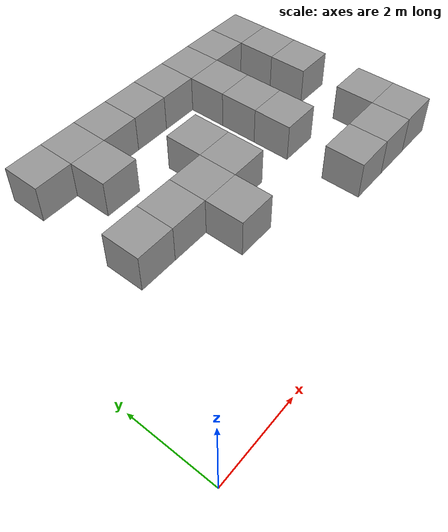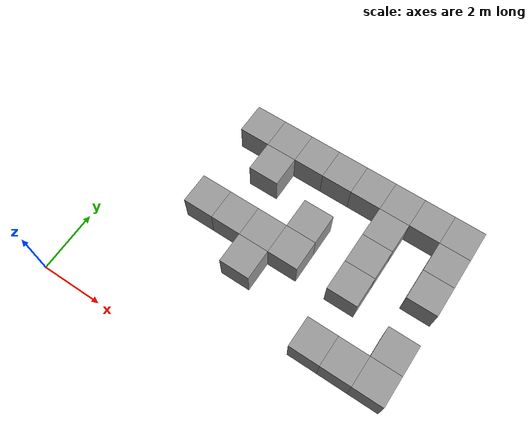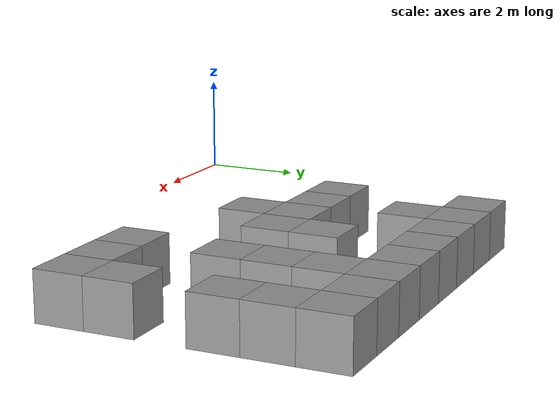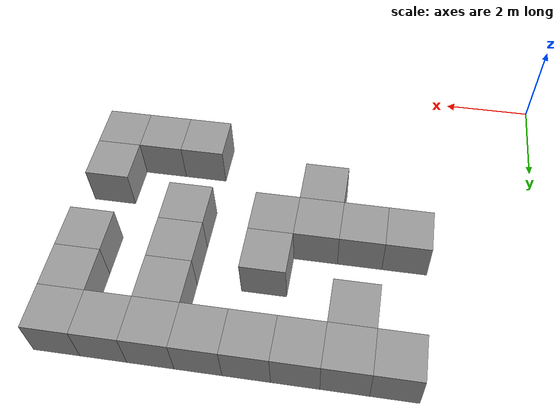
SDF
<sdf version="1.7">
 <model name="maze1">
  <link name="link_1">
   <inertial>
    <mass>1</mass>
    <inertia>
     <ixx>0.166667</ixx>
     <ixy>0</ixy>
     <ixz>0</ixz>
     <iyy>0.166667</iyy>
     <iyz>0</iyz>
     <izz>0.166667</izz>
    </inertia>
   </inertial>
   <pose>9.75382 7.37465 0 0 -0 0</pose>
   <visual name="visual">
    <geometry><box><size>1 1 1</size></box></geometry>
    <material>
     <lighting>1</lighting>
     <script><uri>file://media/materials/scripts/gazebo.material</uri><name>Gazebo/Grey</name></script>
     <shader type="pixel"><normal_map>__default__</normal_map></shader>
     <ambient>0.3 0.3 0.3 1</ambient>
     <diffuse>0.7 0.7 0.7 1</diffuse>
     <specular>0.01 0.01 0.01 1</specular>
     <emissive>0 0 0 1</emissive>
    </material>
   </visual>
   <collision name="collision">
    <geometry><box><size>1 1 1</size></box></geometry>
    <surface>
     <friction>
      <ode><mu>1</mu><mu2>1</mu2><fdir1>0 0 0</fdir1><slip1>0</slip1><slip2>0</slip2></ode>
      <torsional>
       <coefficient>1</coefficient>
       <patch_radius>0</patch_radius>
       <surface_radius>0</surface_radius>
       <use_patch_radius>1</use_patch_radius>
       <ode><slip>0</slip></ode>
      </torsional>
     </friction>
     <bounce><restitution_coefficient>0</restitution_coefficient><threshold>1e+06</threshold></bounce>
     <contact>
      <collide_without_contact>0</collide_without_contact>
      <collide_without_contact_bitmask>1</collide_without_contact_bitmask>
      <collide_bitmask>1</collide_bitmask>
      <ode>
       <soft_cfm>0</soft_cfm>
       <soft_erp>0.2</soft_erp>
       <kp>1e+13</kp>
       <kd>1</kd>
       <max_vel>0.01</max_vel>
       <min_depth>0</min_depth>
      </ode>
      <bullet>
       <split_impulse>1</split_impulse>
       <split_impulse_penetration_threshold>-0.01</split_impulse_penetration_threshold>
       <soft_cfm>0</soft_cfm>
       <soft_erp>0.2</soft_erp>
       <kp>1e+13</kp>
       <kd>1</kd>
      </bullet>
     </contact>
    </surface>
   </collision>
  </link>
  <link name="link_1_clone">
   <inertial>
    <mass>1</mass>
    <inertia>
     <ixx>0.166667</ixx>
     <ixy>0</ixy>
     <ixz>0</ixz>
     <iyy>0.166667</iyy>
     <iyz>0</iyz>
     <izz>0.166667</izz>
    </inertia>
   </inertial>
   <pose>8.75382 7.37465 0 0 -0 0</pose>
   <visual name="visual">
    <geometry><box><size>1 1 1</size></box></geometry>
    <material>
     <lighting>1</lighting>
     <script><uri>file://media/materials/scripts/gazebo.material</uri><name>Gazebo/Grey</name></script>
     <shader type="pixel"><normal_map>__default__</normal_map></shader>
     <ambient>0.3 0.3 0.3 1</ambient>
     <diffuse>0.7 0.7 0.7 1</diffuse>
     <specular>0.01 0.01 0.01 1</specular>
     <emissive>0 0 0 1</emissive>
    </material>
   </visual>
   <collision name="collision">
    <geometry><box><size>1 1 1</size></box></geometry>
    <surface>
     <friction>
      <ode><mu>1</mu><mu2>1</mu2><fdir1>0 0 0</fdir1><slip1>0</slip1><slip2>0</slip2></ode>
      <torsional>
       <coefficient>1</coefficient>
       <patch_radius>0</patch_radius>
       <surface_radius>0</surface_radius>
       <use_patch_radius>1</use_patch_radius>
       <ode><slip>0</slip></ode>
      </torsional>
     </friction>
     <bounce><restitution_coefficient>0</restitution_coefficient><threshold>1e+06</threshold></bounce>
     <contact>
      <collide_without_contact>0</collide_without_contact>
      <collide_without_contact_bitmask>1</collide_without_contact_bitmask>
      <collide_bitmask>1</collide_bitmask>
      <ode>
       <soft_cfm>0</soft_cfm>
       <soft_erp>0.2</soft_erp>
       <kp>1e+13</kp>
       <kd>1</kd>
       <max_vel>0.01</max_vel>
       <min_depth>0</min_depth>
      </ode>
      <bullet>
       <split_impulse>1</split_impulse>
       <split_impulse_penetration_threshold>-0.01</split_impulse_penetration_threshold>
       <soft_cfm>0</soft_cfm>
       <soft_erp>0.2</soft_erp>
       <kp>1e+13</kp>
       <kd>1</kd>
      </bullet>
     </contact>
    </surface>
   </collision>
  </link>
  <link name="link_1_clone_0">
   <inertial>
    <mass>1</mass>
    <inertia>
     <ixx>0.166667</ixx>
     <ixy>0</ixy>
     <ixz>0</ixz>
     <iyy>0.166667</iyy>
     <iyz>0</iyz>
     <izz>0.166667</izz>
    </inertia>
   </inertial>
   <pose>7.75382 7.37465 0 0 -0 0</pose>
   <visual name="visual">
    <geometry><box><size>1 1 1</size></box></geometry>
    <material>
     <lighting>1</lighting>
     <script><uri>file://media/materials/scripts/gazebo.material</uri><name>Gazebo/Grey</name></script>
     <shader type="pixel"><normal_map>__default__</normal_map></shader>
     <ambient>0.3 0.3 0.3 1</ambient>
     <diffuse>0.7 0.7 0.7 1</diffuse>
     <specular>0.01 0.01 0.01 1</specular>
     <emissive>0 0 0 1</emissive>
    </material>
   </visual>
   <collision name="collision">
    <geometry><box><size>1 1 1</size></box></geometry>
    <surface>
     <friction>
      <ode><mu>1</mu><mu2>1</mu2><fdir1>0 0 0</fdir1><slip1>0</slip1><slip2>0</slip2></ode>
      <torsional>
       <coefficient>1</coefficient>
       <patch_radius>0</patch_radius>
       <surface_radius>0</surface_radius>
       <use_patch_radius>1</use_patch_radius>
       <ode><slip>0</slip></ode>
      </torsional>
     </friction>
     <bounce><restitution_coefficient>0</restitution_coefficient><threshold>1e+06</threshold></bounce>
     <contact>
      <collide_without_contact>0</collide_without_contact>
      <collide_without_contact_bitmask>1</collide_without_contact_bitmask>
      <collide_bitmask>1</collide_bitmask>
      <ode>
       <soft_cfm>0</soft_cfm>
       <soft_erp>0.2</soft_erp>
       <kp>1e+13</kp>
       <kd>1</kd>
       <max_vel>0.01</max_vel>
       <min_depth>0</min_depth>
      </ode>
      <bullet>
       <split_impulse>1</split_impulse>
       <split_impulse_penetration_threshold>-0.01</split_impulse_penetration_threshold>
       <soft_cfm>0</soft_cfm>
       <soft_erp>0.2</soft_erp>
       <kp>1e+13</kp>
       <kd>1</kd>
      </bullet>
     </contact>
    </surface>
   </collision>
  </link>
  <link name="link_1_clone_1">
   <inertial>
    <mass>1</mass>
    <inertia>
     <ixx>0.166667</ixx>
     <ixy>0</ixy>
     <ixz>0</ixz>
     <iyy>0.166667</iyy>
     <iyz>0</iyz>
     <izz>0.166667</izz>
    </inertia>
   </inertial>
   <pose>6.75382 7.37465 0 0 -0 0</pose>
   <visual name="visual">
    <geometry><box><size>1 1 1</size></box></geometry>
    <material>
     <lighting>1</lighting>
     <script><uri>file://media/materials/scripts/gazebo.material</uri><name>Gazebo/Grey</name></script>
     <shader type="pixel"><normal_map>__default__</normal_map></shader>
     <ambient>0.3 0.3 0.3 1</ambient>
     <diffuse>0.7 0.7 0.7 1</diffuse>
     <specular>0.01 0.01 0.01 1</specular>
     <emissive>0 0 0 1</emissive>
    </material>
   </visual>
   <collision name="collision">
    <geometry><box><size>1 1 1</size></box></geometry>
    <surface>
     <friction>
      <ode><mu>1</mu><mu2>1</mu2><fdir1>0 0 0</fdir1><slip1>0</slip1><slip2>0</slip2></ode>
      <torsional>
       <coefficient>1</coefficient>
       <patch_radius>0</patch_radius>
       <surface_radius>0</surface_radius>
       <use_patch_radius>1</use_patch_radius>
       <ode><slip>0</slip></ode>
      </torsional>
     </friction>
     <bounce><restitution_coefficient>0</restitution_coefficient><threshold>1e+06</threshold></bounce>
     <contact>
      <collide_without_contact>0</collide_without_contact>
      <collide_without_contact_bitmask>1</collide_without_contact_bitmask>
      <collide_bitmask>1</collide_bitmask>
      <ode>
       <soft_cfm>0</soft_cfm>
       <soft_erp>0.2</soft_erp>
       <kp>1e+13</kp>
       <kd>1</kd>
       <max_vel>0.01</max_vel>
       <min_depth>0</min_depth>
      </ode>
      <bullet>
       <split_impulse>1</split_impulse>
       <split_impulse_penetration_threshold>-0.01</split_impulse_penetration_threshold>
       <soft_cfm>0</soft_cfm>
       <soft_erp>0.2</soft_erp>
       <kp>1e+13</kp>
       <kd>1</kd>
      </bullet>
     </contact>
    </surface>
   </collision>
  </link>
  <link name="link_1_clone_2">
   <inertial>
    <mass>1</mass>
    <inertia>
     <ixx>0.166667</ixx>
     <ixy>0</ixy>
     <ixz>0</ixz>
     <iyy>0.166667</iyy>
     <iyz>0</iyz>
     <izz>0.166667</izz>
    </inertia>
   </inertial>
   <pose>5.75382 7.37465 0 0 -0 0</pose>
   <visual name="visual">
    <geometry><box><size>1 1 1</size></box></geometry>
    <material>
     <lighting>1</lighting>
     <script><uri>file://media/materials/scripts/gazebo.material</uri><name>Gazebo/Grey</name></script>
     <shader type="pixel"><normal_map>__default__</normal_map></shader>
     <ambient>0.3 0.3 0.3 1</ambient>
     <diffuse>0.7 0.7 0.7 1</diffuse>
     <specular>0.01 0.01 0.01 1</specular>
     <emissive>0 0 0 1</emissive>
    </material>
   </visual>
   <collision name="collision">
    <geometry><box><size>1 1 1</size></box></geometry>
    <surface>
     <friction>
      <ode><mu>1</mu><mu2>1</mu2><fdir1>0 0 0</fdir1><slip1>0</slip1><slip2>0</slip2></ode>
      <torsional>
       <coefficient>1</coefficient>
       <patch_radius>0</patch_radius>
       <surface_radius>0</surface_radius>
       <use_patch_radius>1</use_patch_radius>
       <ode><slip>0</slip></ode>
      </torsional>
     </friction>
     <bounce><restitution_coefficient>0</restitution_coefficient><threshold>1e+06</threshold></bounce>
     <contact>
      <collide_without_contact>0</collide_without_contact>
      <collide_without_contact_bitmask>1</collide_without_contact_bitmask>
      <collide_bitmask>1</collide_bitmask>
      <ode>
       <soft_cfm>0</soft_cfm>
       <soft_erp>0.2</soft_erp>
       <kp>1e+13</kp>
       <kd>1</kd>
       <max_vel>0.01</max_vel>
       <min_depth>0</min_depth>
      </ode>
      <bullet>
       <split_impulse>1</split_impulse>
       <split_impulse_penetration_threshold>-0.01</split_impulse_penetration_threshold>
       <soft_cfm>0</soft_cfm>
       <soft_erp>0.2</soft_erp>
       <kp>1e+13</kp>
       <kd>1</kd>
      </bullet>
     </contact>
    </surface>
   </collision>
  </link>
  <link name="link_1_clone_3">
   <inertial>
    <mass>1</mass>
    <inertia>
     <ixx>0.166667</ixx>
     <ixy>0</ixy>
     <ixz>0</ixz>
     <iyy>0.166667</iyy>
     <iyz>0</iyz>
     <izz>0.166667</izz>
    </inertia>
   </inertial>
   <pose>4.75382 7.37465 0 0 -0 0</pose>
   <visual name="visual">
    <geometry><box><size>1 1 1</size></box></geometry>
    <material>
     <lighting>1</lighting>
     <script><uri>file://media/materials/scripts/gazebo.material</uri><name>Gazebo/Grey</name></script>
     <shader type="pixel"><normal_map>__default__</normal_map></shader>
     <ambient>0.3 0.3 0.3 1</ambient>
     <diffuse>0.7 0.7 0.7 1</diffuse>
     <specular>0.01 0.01 0.01 1</specular>
     <emissive>0 0 0 1</emissive>
    </material>
   </visual>
   <collision name="collision">
    <geometry><box><size>1 1 1</size></box></geometry>
    <surface>
     <friction>
      <ode><mu>1</mu><mu2>1</mu2><fdir1>0 0 0</fdir1><slip1>0</slip1><slip2>0</slip2></ode>
      <torsional>
       <coefficient>1</coefficient>
       <patch_radius>0</patch_radius>
       <surface_radius>0</surface_radius>
       <use_patch_radius>1</use_patch_radius>
       <ode><slip>0</slip></ode>
      </torsional>
     </friction>
     <bounce><restitution_coefficient>0</restitution_coefficient><threshold>1e+06</threshold></bounce>
     <contact>
      <collide_without_contact>0</collide_without_contact>
      <collide_without_contact_bitmask>1</collide_without_contact_bitmask>
      <collide_bitmask>1</collide_bitmask>
      <ode>
       <soft_cfm>0</soft_cfm>
       <soft_erp>0.2</soft_erp>
       <kp>1e+13</kp>
       <kd>1</kd>
       <max_vel>0.01</max_vel>
       <min_depth>0</min_depth>
      </ode>
      <bullet>
       <split_impulse>1</split_impulse>
       <split_impulse_penetration_threshold>-0.01</split_impulse_penetration_threshold>
       <soft_cfm>0</soft_cfm>
       <soft_erp>0.2</soft_erp>
       <kp>1e+13</kp>
       <kd>1</kd>
      </bullet>
     </contact>
    </surface>
   </collision>
  </link>
  <link name="link_1_clone_4">
   <inertial>
    <mass>1</mass>
    <inertia>
     <ixx>0.166667</ixx>
     <ixy>0</ixy>
     <ixz>0</ixz>
     <iyy>0.166667</iyy>
     <iyz>0</iyz>
     <izz>0.166667</izz>
    </inertia>
   </inertial>
   <pose>3.75382 7.37465 0 0 -0 0</pose>
   <visual name="visual">
    <geometry><box><size>1 1 1</size></box></geometry>
    <material>
     <lighting>1</lighting>
     <script><uri>file://media/materials/scripts/gazebo.material</uri><name>Gazebo/Grey</name></script>
     <shader type="pixel"><normal_map>__default__</normal_map></shader>
     <ambient>0.3 0.3 0.3 1</ambient>
     <diffuse>0.7 0.7 0.7 1</diffuse>
     <specular>0.01 0.01 0.01 1</specular>
     <emissive>0 0 0 1</emissive>
    </material>
   </visual>
   <collision name="collision">
    <geometry><box><size>1 1 1</size></box></geometry>
    <surface>
     <friction>
      <ode><mu>1</mu><mu2>1</mu2><fdir1>0 0 0</fdir1><slip1>0</slip1><slip2>0</slip2></ode>
      <torsional>
       <coefficient>1</coefficient>
       <patch_radius>0</patch_radius>
       <surface_radius>0</surface_radius>
       <use_patch_radius>1</use_patch_radius>
       <ode><slip>0</slip></ode>
      </torsional>
     </friction>
     <bounce><restitution_coefficient>0</restitution_coefficient><threshold>1e+06</threshold></bounce>
     <contact>
      <collide_without_contact>0</collide_without_contact>
      <collide_without_contact_bitmask>1</collide_without_contact_bitmask>
      <collide_bitmask>1</collide_bitmask>
      <ode>
       <soft_cfm>0</soft_cfm>
       <soft_erp>0.2</soft_erp>
       <kp>1e+13</kp>
       <kd>1</kd>
       <max_vel>0.01</max_vel>
       <min_depth>0</min_depth>
      </ode>
      <bullet>
       <split_impulse>1</split_impulse>
       <split_impulse_penetration_threshold>-0.01</split_impulse_penetration_threshold>
       <soft_cfm>0</soft_cfm>
       <soft_erp>0.2</soft_erp>
       <kp>1e+13</kp>
       <kd>1</kd>
      </bullet>
     </contact>
    </surface>
   </collision>
  </link>
  <link name="link_1_clone_5">
   <inertial>
    <mass>1</mass>
    <inertia>
     <ixx>0.166667</ixx>
     <ixy>0</ixy>
     <ixz>0</ixz>
     <iyy>0.166667</iyy>
     <iyz>0</iyz>
     <izz>0.166667</izz>
    </inertia>
   </inertial>
   <pose>2.75382 7.37465 0 0 -0 0</pose>
   <visual name="visual">
    <geometry><box><size>1 1 1</size></box></geometry>
    <material>
     <lighting>1</lighting>
     <script><uri>file://media/materials/scripts/gazebo.material</uri><name>Gazebo/Grey</name></script>
     <shader type="pixel"><normal_map>__default__</normal_map></shader>
     <ambient>0.3 0.3 0.3 1</ambient>
     <diffuse>0.7 0.7 0.7 1</diffuse>
     <specular>0.01 0.01 0.01 1</specular>
     <emissive>0 0 0 1</emissive>
    </material>
   </visual>
   <collision name="collision">
    <geometry><box><size>1 1 1</size></box></geometry>
    <surface>
     <friction>
      <ode><mu>1</mu><mu2>1</mu2><fdir1>0 0 0</fdir1><slip1>0</slip1><slip2>0</slip2></ode>
      <torsional>
       <coefficient>1</coefficient>
       <patch_radius>0</patch_radius>
       <surface_radius>0</surface_radius>
       <use_patch_radius>1</use_patch_radius>
       <ode><slip>0</slip></ode>
      </torsional>
     </friction>
     <bounce><restitution_coefficient>0</restitution_coefficient><threshold>1e+06</threshold></bounce>
     <contact>
      <collide_without_contact>0</collide_without_contact>
      <collide_without_contact_bitmask>1</collide_without_contact_bitmask>
      <collide_bitmask>1</collide_bitmask>
      <ode>
       <soft_cfm>0</soft_cfm>
       <soft_erp>0.2</soft_erp>
       <kp>1e+13</kp>
       <kd>1</kd>
       <max_vel>0.01</max_vel>
       <min_depth>0</min_depth>
      </ode>
      <bullet>
       <split_impulse>1</split_impulse>
       <split_impulse_penetration_threshold>-0.01</split_impulse_penetration_threshold>
       <soft_cfm>0</soft_cfm>
       <soft_erp>0.2</soft_erp>
       <kp>1e+13</kp>
       <kd>1</kd>
      </bullet>
     </contact>
    </surface>
   </collision>
  </link>
  <link name="link_1_clone_68">
   <inertial>
    <mass>1</mass>
    <inertia>
     <ixx>0.166667</ixx>
     <ixy>0</ixy>
     <ixz>0</ixz>
     <iyy>0.166667</iyy>
     <iyz>0</iyz>
     <izz>0.166667</izz>
    </inertia>
   </inertial>
   <pose>9.75382 2.37465 0 0 -0 0</pose>
   <visual name="visual">
    <geometry><box><size>1 1 1</size></box></geometry>
    <material>
     <lighting>1</lighting>
     <script><uri>file://media/materials/scripts/gazebo.material</uri><name>Gazebo/Grey</name></script>
     <shader type="pixel"><normal_map>__default__</normal_map></shader>
     <ambient>0.3 0.3 0.3 1</ambient>
     <diffuse>0.7 0.7 0.7 1</diffuse>
     <specular>0.01 0.01 0.01 1</specular>
     <emissive>0 0 0 1</emissive>
    </material>
   </visual>
   <collision name="collision">
    <geometry><box><size>1 1 1</size></box></geometry>
    <surface>
     <friction>
      <ode><mu>1</mu><mu2>1</mu2><fdir1>0 0 0</fdir1><slip1>0</slip1><slip2>0</slip2></ode>
      <torsional>
       <coefficient>1</coefficient>
       <patch_radius>0</patch_radius>
       <surface_radius>0</surface_radius>
       <use_patch_radius>1</use_patch_radius>
       <ode><slip>0</slip></ode>
      </torsional>
     </friction>
     <bounce><restitution_coefficient>0</restitution_coefficient><threshold>1e+06</threshold></bounce>
     <contact>
      <collide_without_contact>0</collide_without_contact>
      <collide_without_contact_bitmask>1</collide_without_contact_bitmask>
      <collide_bitmask>1</collide_bitmask>
      <ode>
       <soft_cfm>0</soft_cfm>
       <soft_erp>0.2</soft_erp>
       <kp>1e+13</kp>
       <kd>1</kd>
       <max_vel>0.01</max_vel>
       <min_depth>0</min_depth>
      </ode>
      <bullet>
       <split_impulse>1</split_impulse>
       <split_impulse_penetration_threshold>-0.01</split_impulse_penetration_threshold>
       <soft_cfm>0</soft_cfm>
       <soft_erp>0.2</soft_erp>
       <kp>1e+13</kp>
       <kd>1</kd>
      </bullet>
     </contact>
    </surface>
   </collision>
  </link>
  <link name="link_1_clone_69">
   <inertial>
    <mass>1</mass>
    <inertia>
     <ixx>0.166667</ixx>
     <ixy>0</ixy>
     <ixz>0</ixz>
     <iyy>0.166667</iyy>
     <iyz>0</iyz>
     <izz>0.166667</izz>
    </inertia>
   </inertial>
   <pose>9.75382 3.37465 0 0 -0 0</pose>
   <visual name="visual">
    <geometry><box><size>1 1 1</size></box></geometry>
    <material>
     <lighting>1</lighting>
     <script><uri>file://media/materials/scripts/gazebo.material</uri><name>Gazebo/Grey</name></script>
     <shader type="pixel"><normal_map>__default__</normal_map></shader>
     <ambient>0.3 0.3 0.3 1</ambient>
     <diffuse>0.7 0.7 0.7 1</diffuse>
     <specular>0.01 0.01 0.01 1</specular>
     <emissive>0 0 0 1</emissive>
    </material>
   </visual>
   <collision name="collision">
    <geometry><box><size>1 1 1</size></box></geometry>
    <surface>
     <friction>
      <ode><mu>1</mu><mu2>1</mu2><fdir1>0 0 0</fdir1><slip1>0</slip1><slip2>0</slip2></ode>
      <torsional>
       <coefficient>1</coefficient>
       <patch_radius>0</patch_radius>
       <surface_radius>0</surface_radius>
       <use_patch_radius>1</use_patch_radius>
       <ode><slip>0</slip></ode>
      </torsional>
     </friction>
     <bounce><restitution_coefficient>0</restitution_coefficient><threshold>1e+06</threshold></bounce>
     <contact>
      <collide_without_contact>0</collide_without_contact>
      <collide_without_contact_bitmask>1</collide_without_contact_bitmask>
      <collide_bitmask>1</collide_bitmask>
      <ode>
       <soft_cfm>0</soft_cfm>
       <soft_erp>0.2</soft_erp>
       <kp>1e+13</kp>
       <kd>1</kd>
       <max_vel>0.01</max_vel>
       <min_depth>0</min_depth>
      </ode>
      <bullet>
       <split_impulse>1</split_impulse>
       <split_impulse_penetration_threshold>-0.01</split_impulse_penetration_threshold>
       <soft_cfm>0</soft_cfm>
       <soft_erp>0.2</soft_erp>
       <kp>1e+13</kp>
       <kd>1</kd>
      </bullet>
     </contact>
    </surface>
   </collision>
  </link>
  <link name="link_1_clone_70">
   <inertial>
    <mass>1</mass>
    <inertia>
     <ixx>0.166667</ixx>
     <ixy>0</ixy>
     <ixz>0</ixz>
     <iyy>0.166667</iyy>
     <iyz>0</iyz>
     <izz>0.166667</izz>
    </inertia>
   </inertial>
   <pose>9.75382 5.37465 0 0 -0 0</pose>
   <visual name="visual">
    <geometry><box><size>1 1 1</size></box></geometry>
    <material>
     <lighting>1</lighting>
     <script><uri>file://media/materials/scripts/gazebo.material</uri><name>Gazebo/Grey</name></script>
     <shader type="pixel"><normal_map>__default__</normal_map></shader>
     <ambient>0.3 0.3 0.3 1</ambient>
     <diffuse>0.7 0.7 0.7 1</diffuse>
     <specular>0.01 0.01 0.01 1</specular>
     <emissive>0 0 0 1</emissive>
    </material>
   </visual>
   <collision name="collision">
    <geometry><box><size>1 1 1</size></box></geometry>
    <surface>
     <friction>
      <ode><mu>1</mu><mu2>1</mu2><fdir1>0 0 0</fdir1><slip1>0</slip1><slip2>0</slip2></ode>
      <torsional>
       <coefficient>1</coefficient>
       <patch_radius>0</patch_radius>
       <surface_radius>0</surface_radius>
       <use_patch_radius>1</use_patch_radius>
       <ode><slip>0</slip></ode>
      </torsional>
     </friction>
     <bounce><restitution_coefficient>0</restitution_coefficient><threshold>1e+06</threshold></bounce>
     <contact>
      <collide_without_contact>0</collide_without_contact>
      <collide_without_contact_bitmask>1</collide_without_contact_bitmask>
      <collide_bitmask>1</collide_bitmask>
      <ode>
       <soft_cfm>0</soft_cfm>
       <soft_erp>0.2</soft_erp>
       <kp>1e+13</kp>
       <kd>1</kd>
       <max_vel>0.01</max_vel>
       <min_depth>0</min_depth>
      </ode>
      <bullet>
       <split_impulse>1</split_impulse>
       <split_impulse_penetration_threshold>-0.01</split_impulse_penetration_threshold>
       <soft_cfm>0</soft_cfm>
       <soft_erp>0.2</soft_erp>
       <kp>1e+13</kp>
       <kd>1</kd>
      </bullet>
     </contact>
    </surface>
   </collision>
  </link>
  <link name="link_1_clone_71">
   <inertial>
    <mass>1</mass>
    <inertia>
     <ixx>0.166667</ixx>
     <ixy>0</ixy>
     <ixz>0</ixz>
     <iyy>0.166667</iyy>
     <iyz>0</iyz>
     <izz>0.166667</izz>
    </inertia>
   </inertial>
   <pose>9.75382 6.37465 0 0 -0 0</pose>
   <visual name="visual">
    <geometry><box><size>1 1 1</size></box></geometry>
    <material>
     <lighting>1</lighting>
     <script><uri>file://media/materials/scripts/gazebo.material</uri><name>Gazebo/Grey</name></script>
     <shader type="pixel"><normal_map>__default__</normal_map></shader>
     <ambient>0.3 0.3 0.3 1</ambient>
     <diffuse>0.7 0.7 0.7 1</diffuse>
     <specular>0.01 0.01 0.01 1</specular>
     <emissive>0 0 0 1</emissive>
    </material>
   </visual>
   <collision name="collision">
    <geometry><box><size>1 1 1</size></box></geometry>
    <surface>
     <friction>
      <ode><mu>1</mu><mu2>1</mu2><fdir1>0 0 0</fdir1><slip1>0</slip1><slip2>0</slip2></ode>
      <torsional>
       <coefficient>1</coefficient>
       <patch_radius>0</patch_radius>
       <surface_radius>0</surface_radius>
       <use_patch_radius>1</use_patch_radius>
       <ode><slip>0</slip></ode>
      </torsional>
     </friction>
     <bounce><restitution_coefficient>0</restitution_coefficient><threshold>1e+06</threshold></bounce>
     <contact>
      <collide_without_contact>0</collide_without_contact>
      <collide_without_contact_bitmask>1</collide_without_contact_bitmask>
      <collide_bitmask>1</collide_bitmask>
      <ode>
       <soft_cfm>0</soft_cfm>
       <soft_erp>0.2</soft_erp>
       <kp>1e+13</kp>
       <kd>1</kd>
       <max_vel>0.01</max_vel>
       <min_depth>0</min_depth>
      </ode>
      <bullet>
       <split_impulse>1</split_impulse>
       <split_impulse_penetration_threshold>-0.01</split_impulse_penetration_threshold>
       <soft_cfm>0</soft_cfm>
       <soft_erp>0.2</soft_erp>
       <kp>1e+13</kp>
       <kd>1</kd>
      </bullet>
     </contact>
    </surface>
   </collision>
  </link>
  <link name="link_1_clone_72">
   <inertial>
    <mass>1</mass>
    <inertia>
     <ixx>0.166667</ixx>
     <ixy>0</ixy>
     <ixz>0</ixz>
     <iyy>0.166667</iyy>
     <iyz>0</iyz>
     <izz>0.166667</izz>
    </inertia>
   </inertial>
   <pose>7.75382 6.37465 0 0 -0 0</pose>
   <visual name="visual">
    <geometry><box><size>1 1 1</size></box></geometry>
    <material>
     <lighting>1</lighting>
     <script><uri>file://media/materials/scripts/gazebo.material</uri><name>Gazebo/Grey</name></script>
     <shader type="pixel"><normal_map>__default__</normal_map></shader>
     <ambient>0.3 0.3 0.3 1</ambient>
     <diffuse>0.7 0.7 0.7 1</diffuse>
     <specular>0.01 0.01 0.01 1</specular>
     <emissive>0 0 0 1</emissive>
    </material>
   </visual>
   <collision name="collision">
    <geometry><box><size>1 1 1</size></box></geometry>
    <surface>
     <friction>
      <ode><mu>1</mu><mu2>1</mu2><fdir1>0 0 0</fdir1><slip1>0</slip1><slip2>0</slip2></ode>
      <torsional>
       <coefficient>1</coefficient>
       <patch_radius>0</patch_radius>
       <surface_radius>0</surface_radius>
       <use_patch_radius>1</use_patch_radius>
       <ode><slip>0</slip></ode>
      </torsional>
     </friction>
     <bounce><restitution_coefficient>0</restitution_coefficient><threshold>1e+06</threshold></bounce>
     <contact>
      <collide_without_contact>0</collide_without_contact>
      <collide_without_contact_bitmask>1</collide_without_contact_bitmask>
      <collide_bitmask>1</collide_bitmask>
      <ode>
       <soft_cfm>0</soft_cfm>
       <soft_erp>0.2</soft_erp>
       <kp>1e+13</kp>
       <kd>1</kd>
       <max_vel>0.01</max_vel>
       <min_depth>0</min_depth>
      </ode>
      <bullet>
       <split_impulse>1</split_impulse>
       <split_impulse_penetration_threshold>-0.01</split_impulse_penetration_threshold>
       <soft_cfm>0</soft_cfm>
       <soft_erp>0.2</soft_erp>
       <kp>1e+13</kp>
       <kd>1</kd>
      </bullet>
     </contact>
    </surface>
   </collision>
  </link>
  <link name="link_1_clone_73">
   <inertial>
    <mass>1</mass>
    <inertia>
     <ixx>0.166667</ixx>
     <ixy>0</ixy>
     <ixz>0</ixz>
     <iyy>0.166667</iyy>
     <iyz>0</iyz>
     <izz>0.166667</izz>
    </inertia>
   </inertial>
   <pose>7.75382 5.37465 0 0 -0 0</pose>
   <visual name="visual">
    <geometry><box><size>1 1 1</size></box></geometry>
    <material>
     <lighting>1</lighting>
     <script><uri>file://media/materials/scripts/gazebo.material</uri><name>Gazebo/Grey</name></script>
     <shader type="pixel"><normal_map>__default__</normal_map></shader>
     <ambient>0.3 0.3 0.3 1</ambient>
     <diffuse>0.7 0.7 0.7 1</diffuse>
     <specular>0.01 0.01 0.01 1</specular>
     <emissive>0 0 0 1</emissive>
    </material>
   </visual>
   <collision name="collision">
    <geometry><box><size>1 1 1</size></box></geometry>
    <surface>
     <friction>
      <ode><mu>1</mu><mu2>1</mu2><fdir1>0 0 0</fdir1><slip1>0</slip1><slip2>0</slip2></ode>
      <torsional>
       <coefficient>1</coefficient>
       <patch_radius>0</patch_radius>
       <surface_radius>0</surface_radius>
       <use_patch_radius>1</use_patch_radius>
       <ode><slip>0</slip></ode>
      </torsional>
     </friction>
     <bounce><restitution_coefficient>0</restitution_coefficient><threshold>1e+06</threshold></bounce>
     <contact>
      <collide_without_contact>0</collide_without_contact>
      <collide_without_contact_bitmask>1</collide_without_contact_bitmask>
      <collide_bitmask>1</collide_bitmask>
      <ode>
       <soft_cfm>0</soft_cfm>
       <soft_erp>0.2</soft_erp>
       <kp>1e+13</kp>
       <kd>1</kd>
       <max_vel>0.01</max_vel>
       <min_depth>0</min_depth>
      </ode>
      <bullet>
       <split_impulse>1</split_impulse>
       <split_impulse_penetration_threshold>-0.01</split_impulse_penetration_threshold>
       <soft_cfm>0</soft_cfm>
       <soft_erp>0.2</soft_erp>
       <kp>1e+13</kp>
       <kd>1</kd>
      </bullet>
     </contact>
    </surface>
   </collision>
  </link>
  <link name="link_1_clone_74">
   <inertial>
    <mass>1</mass>
    <inertia>
     <ixx>0.166667</ixx>
     <ixy>0</ixy>
     <ixz>0</ixz>
     <iyy>0.166667</iyy>
     <iyz>0</iyz>
     <izz>0.166667</izz>
    </inertia>
   </inertial>
   <pose>7.75382 4.37465 0 0 -0 0</pose>
   <visual name="visual">
    <geometry><box><size>1 1 1</size></box></geometry>
    <material>
     <lighting>1</lighting>
     <script><uri>file://media/materials/scripts/gazebo.material</uri><name>Gazebo/Grey</name></script>
     <shader type="pixel"><normal_map>__default__</normal_map></shader>
     <ambient>0.3 0.3 0.3 1</ambient>
     <diffuse>0.7 0.7 0.7 1</diffuse>
     <specular>0.01 0.01 0.01 1</specular>
     <emissive>0 0 0 1</emissive>
    </material>
   </visual>
   <collision name="collision">
    <geometry><box><size>1 1 1</size></box></geometry>
    <surface>
     <friction>
      <ode><mu>1</mu><mu2>1</mu2><fdir1>0 0 0</fdir1><slip1>0</slip1><slip2>0</slip2></ode>
      <torsional>
       <coefficient>1</coefficient>
       <patch_radius>0</patch_radius>
       <surface_radius>0</surface_radius>
       <use_patch_radius>1</use_patch_radius>
       <ode><slip>0</slip></ode>
      </torsional>
     </friction>
     <bounce><restitution_coefficient>0</restitution_coefficient><threshold>1e+06</threshold></bounce>
     <contact>
      <collide_without_contact>0</collide_without_contact>
      <collide_without_contact_bitmask>1</collide_without_contact_bitmask>
      <collide_bitmask>1</collide_bitmask>
      <ode>
       <soft_cfm>0</soft_cfm>
       <soft_erp>0.2</soft_erp>
       <kp>1e+13</kp>
       <kd>1</kd>
       <max_vel>0.01</max_vel>
       <min_depth>0</min_depth>
      </ode>
      <bullet>
       <split_impulse>1</split_impulse>
       <split_impulse_penetration_threshold>-0.01</split_impulse_penetration_threshold>
       <soft_cfm>0</soft_cfm>
       <soft_erp>0.2</soft_erp>
       <kp>1e+13</kp>
       <kd>1</kd>
      </bullet>
     </contact>
    </surface>
   </collision>
  </link>
  <link name="link_1_clone_75">
   <inertial>
    <mass>1</mass>
    <inertia>
     <ixx>0.166667</ixx>
     <ixy>0</ixy>
     <ixz>0</ixz>
     <iyy>0.166667</iyy>
     <iyz>0</iyz>
     <izz>0.166667</izz>
    </inertia>
   </inertial>
   <pose>8.75382 2.37465 0 0 -0 0</pose>
   <visual name="visual">
    <geometry><box><size>1 1 1</size></box></geometry>
    <material>
     <lighting>1</lighting>
     <script><uri>file://media/materials/scripts/gazebo.material</uri><name>Gazebo/Grey</name></script>
     <shader type="pixel"><normal_map>__default__</normal_map></shader>
     <ambient>0.3 0.3 0.3 1</ambient>
     <diffuse>0.7 0.7 0.7 1</diffuse>
     <specular>0.01 0.01 0.01 1</specular>
     <emissive>0 0 0 1</emissive>
    </material>
   </visual>
   <collision name="collision">
    <geometry><box><size>1 1 1</size></box></geometry>
    <surface>
     <friction>
      <ode><mu>1</mu><mu2>1</mu2><fdir1>0 0 0</fdir1><slip1>0</slip1><slip2>0</slip2></ode>
      <torsional>
       <coefficient>1</coefficient>
       <patch_radius>0</patch_radius>
       <surface_radius>0</surface_radius>
       <use_patch_radius>1</use_patch_radius>
       <ode><slip>0</slip></ode>
      </torsional>
     </friction>
     <bounce><restitution_coefficient>0</restitution_coefficient><threshold>1e+06</threshold></bounce>
     <contact>
      <collide_without_contact>0</collide_without_contact>
      <collide_without_contact_bitmask>1</collide_without_contact_bitmask>
      <collide_bitmask>1</collide_bitmask>
      <ode>
       <soft_cfm>0</soft_cfm>
       <soft_erp>0.2</soft_erp>
       <kp>1e+13</kp>
       <kd>1</kd>
       <max_vel>0.01</max_vel>
       <min_depth>0</min_depth>
      </ode>
      <bullet>
       <split_impulse>1</split_impulse>
       <split_impulse_penetration_threshold>-0.01</split_impulse_penetration_threshold>
       <soft_cfm>0</soft_cfm>
       <soft_erp>0.2</soft_erp>
       <kp>1e+13</kp>
       <kd>1</kd>
      </bullet>
     </contact>
    </surface>
   </collision>
  </link>
  <link name="link_1_clone_76">
   <inertial>
    <mass>1</mass>
    <inertia>
     <ixx>0.166667</ixx>
     <ixy>0</ixy>
     <ixz>0</ixz>
     <iyy>0.166667</iyy>
     <iyz>0</iyz>
     <izz>0.166667</izz>
    </inertia>
   </inertial>
   <pose>7.75382 2.37465 0 0 -0 0</pose>
   <visual name="visual">
    <geometry><box><size>1 1 1</size></box></geometry>
    <material>
     <lighting>1</lighting>
     <script><uri>file://media/materials/scripts/gazebo.material</uri><name>Gazebo/Grey</name></script>
     <shader type="pixel"><normal_map>__default__</normal_map></shader>
     <ambient>0.3 0.3 0.3 1</ambient>
     <diffuse>0.7 0.7 0.7 1</diffuse>
     <specular>0.01 0.01 0.01 1</specular>
     <emissive>0 0 0 1</emissive>
    </material>
   </visual>
   <collision name="collision">
    <geometry><box><size>1 1 1</size></box></geometry>
    <surface>
     <friction>
      <ode><mu>1</mu><mu2>1</mu2><fdir1>0 0 0</fdir1><slip1>0</slip1><slip2>0</slip2></ode>
      <torsional>
       <coefficient>1</coefficient>
       <patch_radius>0</patch_radius>
       <surface_radius>0</surface_radius>
       <use_patch_radius>1</use_patch_radius>
       <ode><slip>0</slip></ode>
      </torsional>
     </friction>
     <bounce><restitution_coefficient>0</restitution_coefficient><threshold>1e+06</threshold></bounce>
     <contact>
      <collide_without_contact>0</collide_without_contact>
      <collide_without_contact_bitmask>1</collide_without_contact_bitmask>
      <collide_bitmask>1</collide_bitmask>
      <ode>
       <soft_cfm>0</soft_cfm>
       <soft_erp>0.2</soft_erp>
       <kp>1e+13</kp>
       <kd>1</kd>
       <max_vel>0.01</max_vel>
       <min_depth>0</min_depth>
      </ode>
      <bullet>
       <split_impulse>1</split_impulse>
       <split_impulse_penetration_threshold>-0.01</split_impulse_penetration_threshold>
       <soft_cfm>0</soft_cfm>
       <soft_erp>0.2</soft_erp>
       <kp>1e+13</kp>
       <kd>1</kd>
      </bullet>
     </contact>
    </surface>
   </collision>
  </link>
  <link name="link_1_clone_80">
   <inertial>
    <mass>1</mass>
    <inertia>
     <ixx>0.166667</ixx>
     <ixy>0</ixy>
     <ixz>0</ixz>
     <iyy>0.166667</iyy>
     <iyz>0</iyz>
     <izz>0.166667</izz>
    </inertia>
   </inertial>
   <pose>4.75382 3.37465 0 0 -0 0</pose>
   <visual name="visual">
    <geometry><box><size>1 1 1</size></box></geometry>
    <material>
     <lighting>1</lighting>
     <script><uri>file://media/materials/scripts/gazebo.material</uri><name>Gazebo/Grey</name></script>
     <shader type="pixel"><normal_map>__default__</normal_map></shader>
     <ambient>0.3 0.3 0.3 1</ambient>
     <diffuse>0.7 0.7 0.7 1</diffuse>
     <specular>0.01 0.01 0.01 1</specular>
     <emissive>0 0 0 1</emissive>
    </material>
   </visual>
   <collision name="collision">
    <geometry><box><size>1 1 1</size></box></geometry>
    <surface>
     <friction>
      <ode><mu>1</mu><mu2>1</mu2><fdir1>0 0 0</fdir1><slip1>0</slip1><slip2>0</slip2></ode>
      <torsional>
       <coefficient>1</coefficient>
       <patch_radius>0</patch_radius>
       <surface_radius>0</surface_radius>
       <use_patch_radius>1</use_patch_radius>
       <ode><slip>0</slip></ode>
      </torsional>
     </friction>
     <bounce><restitution_coefficient>0</restitution_coefficient><threshold>1e+06</threshold></bounce>
     <contact>
      <collide_without_contact>0</collide_without_contact>
      <collide_without_contact_bitmask>1</collide_without_contact_bitmask>
      <collide_bitmask>1</collide_bitmask>
      <ode>
       <soft_cfm>0</soft_cfm>
       <soft_erp>0.2</soft_erp>
       <kp>1e+13</kp>
       <kd>1</kd>
       <max_vel>0.01</max_vel>
       <min_depth>0</min_depth>
      </ode>
      <bullet>
       <split_impulse>1</split_impulse>
       <split_impulse_penetration_threshold>-0.01</split_impulse_penetration_threshold>
       <soft_cfm>0</soft_cfm>
       <soft_erp>0.2</soft_erp>
       <kp>1e+13</kp>
       <kd>1</kd>
      </bullet>
     </contact>
    </surface>
   </collision>
  </link>
  <link name="link_1_clone_81">
   <inertial>
    <mass>1</mass>
    <inertia>
     <ixx>0.166667</ixx>
     <ixy>0</ixy>
     <ixz>0</ixz>
     <iyy>0.166667</iyy>
     <iyz>0</iyz>
     <izz>0.166667</izz>
    </inertia>
   </inertial>
   <pose>5.75382 5.37465 0 0 -0 0</pose>
   <visual name="visual">
    <geometry><box><size>1 1 1</size></box></geometry>
    <material>
     <lighting>1</lighting>
     <script><uri>file://media/materials/scripts/gazebo.material</uri><name>Gazebo/Grey</name></script>
     <shader type="pixel"><normal_map>__default__</normal_map></shader>
     <ambient>0.3 0.3 0.3 1</ambient>
     <diffuse>0.7 0.7 0.7 1</diffuse>
     <specular>0.01 0.01 0.01 1</specular>
     <emissive>0 0 0 1</emissive>
    </material>
   </visual>
   <collision name="collision">
    <geometry><box><size>1 1 1</size></box></geometry>
    <surface>
     <friction>
      <ode><mu>1</mu><mu2>1</mu2><fdir1>0 0 0</fdir1><slip1>0</slip1><slip2>0</slip2></ode>
      <torsional>
       <coefficient>1</coefficient>
       <patch_radius>0</patch_radius>
       <surface_radius>0</surface_radius>
       <use_patch_radius>1</use_patch_radius>
       <ode><slip>0</slip></ode>
      </torsional>
     </friction>
     <bounce><restitution_coefficient>0</restitution_coefficient><threshold>1e+06</threshold></bounce>
     <contact>
      <collide_without_contact>0</collide_without_contact>
      <collide_without_contact_bitmask>1</collide_without_contact_bitmask>
      <collide_bitmask>1</collide_bitmask>
      <ode>
       <soft_cfm>0</soft_cfm>
       <soft_erp>0.2</soft_erp>
       <kp>1e+13</kp>
       <kd>1</kd>
       <max_vel>0.01</max_vel>
       <min_depth>0</min_depth>
      </ode>
      <bullet>
       <split_impulse>1</split_impulse>
       <split_impulse_penetration_threshold>-0.01</split_impulse_penetration_threshold>
       <soft_cfm>0</soft_cfm>
       <soft_erp>0.2</soft_erp>
       <kp>1e+13</kp>
       <kd>1</kd>
      </bullet>
     </contact>
    </surface>
   </collision>
  </link>
  <link name="link_1_clone_82">
   <inertial>
    <mass>1</mass>
    <inertia>
     <ixx>0.166667</ixx>
     <ixy>0</ixy>
     <ixz>0</ixz>
     <iyy>0.166667</iyy>
     <iyz>0</iyz>
     <izz>0.166667</izz>
    </inertia>
   </inertial>
   <pose>5.75382 4.37465 0 0 -0 0</pose>
   <visual name="visual">
    <geometry><box><size>1 1 1</size></box></geometry>
    <material>
     <lighting>1</lighting>
     <script><uri>file://media/materials/scripts/gazebo.material</uri><name>Gazebo/Grey</name></script>
     <shader type="pixel"><normal_map>__default__</normal_map></shader>
     <ambient>0.3 0.3 0.3 1</ambient>
     <diffuse>0.7 0.7 0.7 1</diffuse>
     <specular>0.01 0.01 0.01 1</specular>
     <emissive>0 0 0 1</emissive>
    </material>
   </visual>
   <collision name="collision">
    <geometry><box><size>1 1 1</size></box></geometry>
    <surface>
     <friction>
      <ode><mu>1</mu><mu2>1</mu2><fdir1>0 0 0</fdir1><slip1>0</slip1><slip2>0</slip2></ode>
      <torsional>
       <coefficient>1</coefficient>
       <patch_radius>0</patch_radius>
       <surface_radius>0</surface_radius>
       <use_patch_radius>1</use_patch_radius>
       <ode><slip>0</slip></ode>
      </torsional>
     </friction>
     <bounce><restitution_coefficient>0</restitution_coefficient><threshold>1e+06</threshold></bounce>
     <contact>
      <collide_without_contact>0</collide_without_contact>
      <collide_without_contact_bitmask>1</collide_without_contact_bitmask>
      <collide_bitmask>1</collide_bitmask>
      <ode>
       <soft_cfm>0</soft_cfm>
       <soft_erp>0.2</soft_erp>
       <kp>1e+13</kp>
       <kd>1</kd>
       <max_vel>0.01</max_vel>
       <min_depth>0</min_depth>
      </ode>
      <bullet>
       <split_impulse>1</split_impulse>
       <split_impulse_penetration_threshold>-0.01</split_impulse_penetration_threshold>
       <soft_cfm>0</soft_cfm>
       <soft_erp>0.2</soft_erp>
       <kp>1e+13</kp>
       <kd>1</kd>
      </bullet>
     </contact>
    </surface>
   </collision>
  </link>
  <link name="link_1_clone_83">
   <inertial>
    <mass>1</mass>
    <inertia>
     <ixx>0.166667</ixx>
     <ixy>0</ixy>
     <ixz>0</ixz>
     <iyy>0.166667</iyy>
     <iyz>0</iyz>
     <izz>0.166667</izz>
    </inertia>
   </inertial>
   <pose>4.75382 4.37465 0 0 -0 0</pose>
   <visual name="visual">
    <geometry><box><size>1 1 1</size></box></geometry>
    <material>
     <lighting>1</lighting>
     <script><uri>file://media/materials/scripts/gazebo.material</uri><name>Gazebo/Grey</name></script>
     <shader type="pixel"><normal_map>__default__</normal_map></shader>
     <ambient>0.3 0.3 0.3 1</ambient>
     <diffuse>0.7 0.7 0.7 1</diffuse>
     <specular>0.01 0.01 0.01 1</specular>
     <emissive>0 0 0 1</emissive>
    </material>
   </visual>
   <collision name="collision">
    <geometry><box><size>1 1 1</size></box></geometry>
    <surface>
     <friction>
      <ode><mu>1</mu><mu2>1</mu2><fdir1>0 0 0</fdir1><slip1>0</slip1><slip2>0</slip2></ode>
      <torsional>
       <coefficient>1</coefficient>
       <patch_radius>0</patch_radius>
       <surface_radius>0</surface_radius>
       <use_patch_radius>1</use_patch_radius>
       <ode><slip>0</slip></ode>
      </torsional>
     </friction>
     <bounce><restitution_coefficient>0</restitution_coefficient><threshold>1e+06</threshold></bounce>
     <contact>
      <collide_without_contact>0</collide_without_contact>
      <collide_without_contact_bitmask>1</collide_without_contact_bitmask>
      <collide_bitmask>1</collide_bitmask>
      <ode>
       <soft_cfm>0</soft_cfm>
       <soft_erp>0.2</soft_erp>
       <kp>1e+13</kp>
       <kd>1</kd>
       <max_vel>0.01</max_vel>
       <min_depth>0</min_depth>
      </ode>
      <bullet>
       <split_impulse>1</split_impulse>
       <split_impulse_penetration_threshold>-0.01</split_impulse_penetration_threshold>
       <soft_cfm>0</soft_cfm>
       <soft_erp>0.2</soft_erp>
       <kp>1e+13</kp>
       <kd>1</kd>
      </bullet>
     </contact>
    </surface>
   </collision>
  </link>
  <link name="link_1_clone_84">
   <inertial>
    <mass>1</mass>
    <inertia>
     <ixx>0.166667</ixx>
     <ixy>0</ixy>
     <ixz>0</ixz>
     <iyy>0.166667</iyy>
     <iyz>0</iyz>
     <izz>0.166667</izz>
    </inertia>
   </inertial>
   <pose>3.75382 4.37465 0 0 -0 0</pose>
   <visual name="visual">
    <geometry><box><size>1 1 1</size></box></geometry>
    <material>
     <lighting>1</lighting>
     <script><uri>file://media/materials/scripts/gazebo.material</uri><name>Gazebo/Grey</name></script>
     <shader type="pixel"><normal_map>__default__</normal_map></shader>
     <ambient>0.3 0.3 0.3 1</ambient>
     <diffuse>0.7 0.7 0.7 1</diffuse>
     <specular>0.01 0.01 0.01 1</specular>
     <emissive>0 0 0 1</emissive>
    </material>
   </visual>
   <collision name="collision">
    <geometry><box><size>1 1 1</size></box></geometry>
    <surface>
     <friction>
      <ode><mu>1</mu><mu2>1</mu2><fdir1>0 0 0</fdir1><slip1>0</slip1><slip2>0</slip2></ode>
      <torsional>
       <coefficient>1</coefficient>
       <patch_radius>0</patch_radius>
       <surface_radius>0</surface_radius>
       <use_patch_radius>1</use_patch_radius>
       <ode><slip>0</slip></ode>
      </torsional>
     </friction>
     <bounce><restitution_coefficient>0</restitution_coefficient><threshold>1e+06</threshold></bounce>
     <contact>
      <collide_without_contact>0</collide_without_contact>
      <collide_without_contact_bitmask>1</collide_without_contact_bitmask>
      <collide_bitmask>1</collide_bitmask>
      <ode>
       <soft_cfm>0</soft_cfm>
       <soft_erp>0.2</soft_erp>
       <kp>1e+13</kp>
       <kd>1</kd>
       <max_vel>0.01</max_vel>
       <min_depth>0</min_depth>
      </ode>
      <bullet>
       <split_impulse>1</split_impulse>
       <split_impulse_penetration_threshold>-0.01</split_impulse_penetration_threshold>
       <soft_cfm>0</soft_cfm>
       <soft_erp>0.2</soft_erp>
       <kp>1e+13</kp>
       <kd>1</kd>
      </bullet>
     </contact>
    </surface>
   </collision>
  </link>
  <link name="link_1_clone_85">
   <inertial>
    <mass>1</mass>
    <inertia>
     <ixx>0.166667</ixx>
     <ixy>0</ixy>
     <ixz>0</ixz>
     <iyy>0.166667</iyy>
     <iyz>0</iyz>
     <izz>0.166667</izz>
    </inertia>
   </inertial>
   <pose>2.75382 4.37465 0 0 -0 0</pose>
   <visual name="visual">
    <geometry><box><size>1 1 1</size></box></geometry>
    <material>
     <lighting>1</lighting>
     <script><uri>file://media/materials/scripts/gazebo.material</uri><name>Gazebo/Grey</name></script>
     <shader type="pixel"><normal_map>__default__</normal_map></shader>
     <ambient>0.3 0.3 0.3 1</ambient>
     <diffuse>0.7 0.7 0.7 1</diffuse>
     <specular>0.01 0.01 0.01 1</specular>
     <emissive>0 0 0 1</emissive>
    </material>
   </visual>
   <collision name="collision">
    <geometry><box><size>1 1 1</size></box></geometry>
    <surface>
     <friction>
      <ode><mu>1</mu><mu2>1</mu2><fdir1>0 0 0</fdir1><slip1>0</slip1><slip2>0</slip2></ode>
      <torsional>
       <coefficient>1</coefficient>
       <patch_radius>0</patch_radius>
       <surface_radius>0</surface_radius>
       <use_patch_radius>1</use_patch_radius>
       <ode><slip>0</slip></ode>
      </torsional>
     </friction>
     <bounce><restitution_coefficient>0</restitution_coefficient><threshold>1e+06</threshold></bounce>
     <contact>
      <collide_without_contact>0</collide_without_contact>
      <collide_without_contact_bitmask>1</collide_without_contact_bitmask>
      <collide_bitmask>1</collide_bitmask>
      <ode>
       <soft_cfm>0</soft_cfm>
       <soft_erp>0.2</soft_erp>
       <kp>1e+13</kp>
       <kd>1</kd>
       <max_vel>0.01</max_vel>
       <min_depth>0</min_depth>
      </ode>
      <bullet>
       <split_impulse>1</split_impulse>
       <split_impulse_penetration_threshold>-0.01</split_impulse_penetration_threshold>
       <soft_cfm>0</soft_cfm>
       <soft_erp>0.2</soft_erp>
       <kp>1e+13</kp>
       <kd>1</kd>
      </bullet>
     </contact>
    </surface>
   </collision>
  </link>
  <link name="link_1_clone_86">
   <inertial>
    <mass>1</mass>
    <inertia>
     <ixx>0.166667</ixx>
     <ixy>0</ixy>
     <ixz>0</ixz>
     <iyy>0.166667</iyy>
     <iyz>0</iyz>
     <izz>0.166667</izz>
    </inertia>
   </inertial>
   <pose>3.75382 6.37465 0 0 -0 0</pose>
   <visual name="visual">
    <geometry><box><size>1 1 1</size></box></geometry>
    <material>
     <lighting>1</lighting>
     <script><uri>file://media/materials/scripts/gazebo.material</uri><name>Gazebo/Grey</name></script>
     <shader type="pixel"><normal_map>__default__</normal_map></shader>
     <ambient>0.3 0.3 0.3 1</ambient>
     <diffuse>0.7 0.7 0.7 1</diffuse>
     <specular>0.01 0.01 0.01 1</specular>
     <emissive>0 0 0 1</emissive>
    </material>
   </visual>
   <collision name="collision">
    <geometry><box><size>1 1 1</size></box></geometry>
    <surface>
     <friction>
      <ode><mu>1</mu><mu2>1</mu2><fdir1>0 0 0</fdir1><slip1>0</slip1><slip2>0</slip2></ode>
      <torsional>
       <coefficient>1</coefficient>
       <patch_radius>0</patch_radius>
       <surface_radius>0</surface_radius>
       <use_patch_radius>1</use_patch_radius>
       <ode><slip>0</slip></ode>
      </torsional>
     </friction>
     <bounce><restitution_coefficient>0</restitution_coefficient><threshold>1e+06</threshold></bounce>
     <contact>
      <collide_without_contact>0</collide_without_contact>
      <collide_without_contact_bitmask>1</collide_without_contact_bitmask>
      <collide_bitmask>1</collide_bitmask>
      <ode>
       <soft_cfm>0</soft_cfm>
       <soft_erp>0.2</soft_erp>
       <kp>1e+13</kp>
       <kd>1</kd>
       <max_vel>0.01</max_vel>
       <min_depth>0</min_depth>
      </ode>
      <bullet>
       <split_impulse>1</split_impulse>
       <split_impulse_penetration_threshold>-0.01</split_impulse_penetration_threshold>
       <soft_cfm>0</soft_cfm>
       <soft_erp>0.2</soft_erp>
       <kp>1e+13</kp>
       <kd>1</kd>
      </bullet>
     </contact>
    </surface>
   </collision>
  </link>
  <static>0</static>
 </model>
</sdf>
